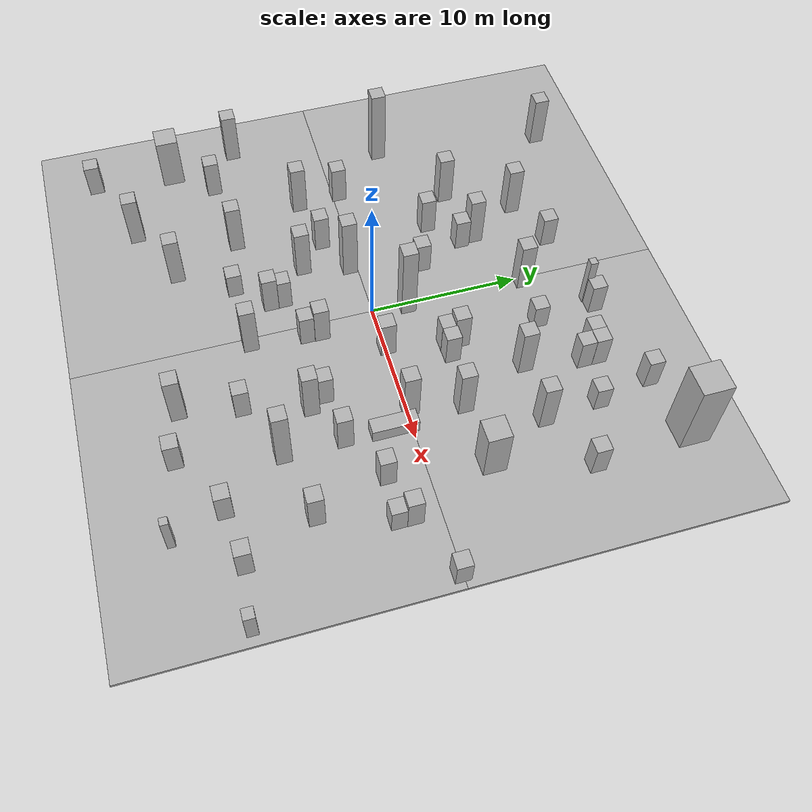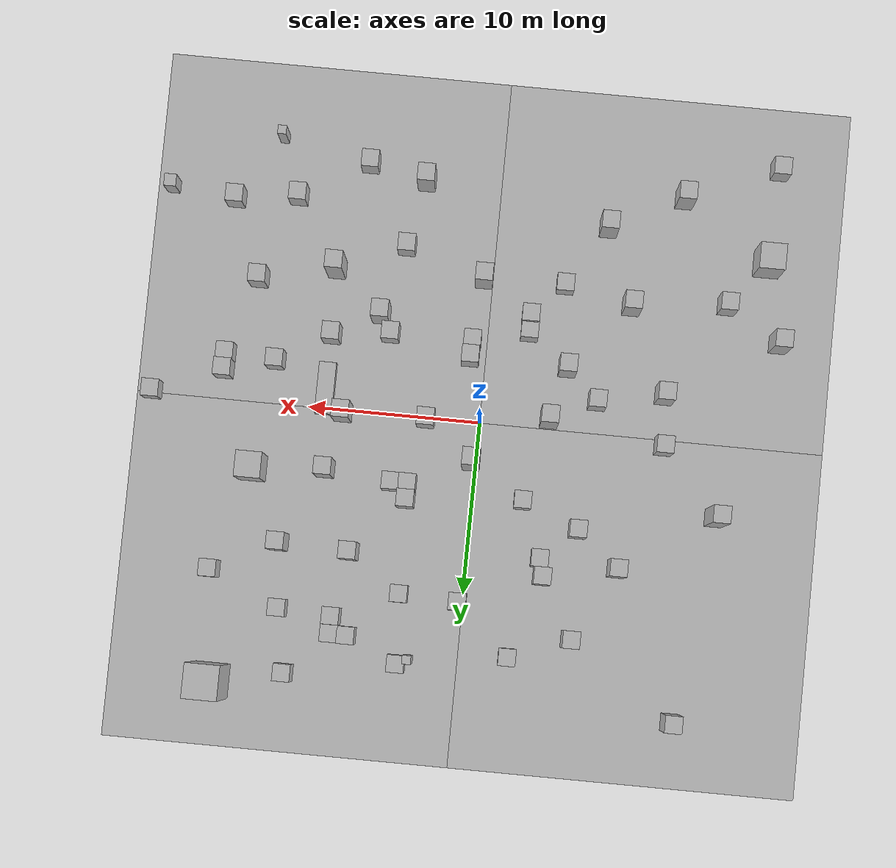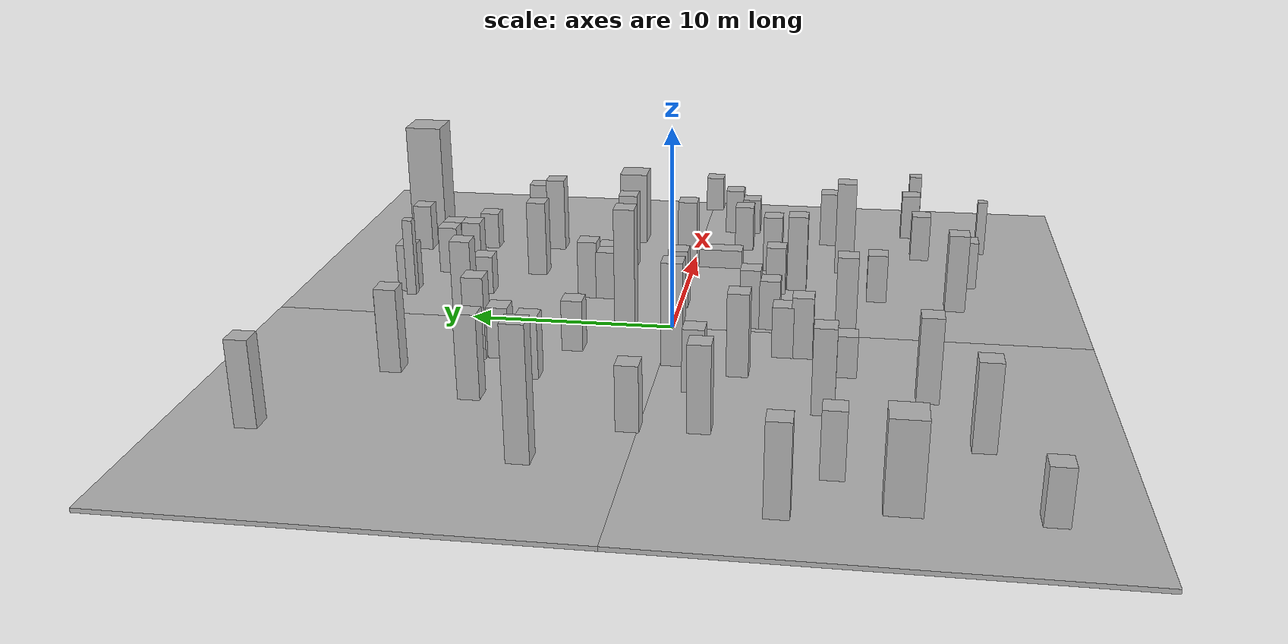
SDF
<sdf version="1.4">
 <world name="default">
  <include><uri>model://sun</uri></include>
  <model name="gd1">
   <static>1</static>
   <link name="chassis">
    <pose>10 10 -0.1 0 0 0</pose>
    <collision name="collision"><geometry><box><size>20 20 0.2</size></box></geometry></collision>
    <visual name="visual">
     <geometry>
      <mesh><uri>model://ground_surface/meshes/simple_box.dae</uri><scale>20 20 0.2</scale></mesh>
     </geometry>
     <material>
      <script>
       <uri>model://ground_surface/materials/scripts</uri>
       <uri>model://ground_surface/materials/textures</uri>
       <name>BrickBox/Ground</name>
      </script>
     </material>
    </visual>
   </link>
  </model>
  <model name="gd2">
   <static>1</static>
   <link name="chassis">
    <pose>10 -10 -0.1 0 0 0</pose>
    <collision name="collision"><geometry><box><size>20 20 0.2</size></box></geometry></collision>
    <visual name="visual">
     <geometry>
      <mesh><uri>model://ground_surface/meshes/simple_box.dae</uri><scale>20 20 0.2</scale></mesh>
     </geometry>
     <material>
      <script>
       <uri>model://ground_surface/materials/scripts</uri>
       <uri>model://ground_surface/materials/textures</uri>
       <name>BrickBox/Ground</name>
      </script>
     </material>
    </visual>
   </link>
  </model>
  <model name="gd3">
   <static>1</static>
   <link name="chassis">
    <pose>-10 10 -0.1 0 0 0</pose>
    <collision name="collision"><geometry><box><size>20 20 0.2</size></box></geometry></collision>
    <visual name="visual">
     <geometry>
      <mesh><uri>model://ground_surface/meshes/simple_box.dae</uri><scale>20 20 0.2</scale></mesh>
     </geometry>
     <material>
      <script>
       <uri>model://ground_surface/materials/scripts</uri>
       <uri>model://ground_surface/materials/textures</uri>
       <name>BrickBox/Ground</name>
      </script>
     </material>
    </visual>
   </link>
  </model>
  <model name="gd4">
   <static>1</static>
   <link name="chassis">
    <pose>-10 -10 -0.1 0 0 0</pose>
    <collision name="collision"><geometry><box><size>20 20 0.2</size></box></geometry></collision>
    <visual name="visual">
     <geometry>
      <mesh><uri>model://ground_surface/meshes/simple_box.dae</uri><scale>20 20 0.2</scale></mesh>
     </geometry>
     <material>
      <script>
       <uri>model://ground_surface/materials/scripts</uri>
       <uri>model://ground_surface/materials/textures</uri>
       <name>BrickBox/Ground</name>
      </script>
     </material>
    </visual>
   </link>
  </model>
  <model name="bb1">
   <static>1</static>
   <link name="chassis">
    <pose>12.88407 -15.56919 1.5 0 -0 0</pose>
    <collision name="collision"><geometry><box><size>0.5 0.5 3</size></box></geometry></collision>
    <visual name="visual">
     <geometry><mesh><uri>model://brick_box_2/meshes/simple_box.dae</uri><scale>0.5 0.5 3</scale></mesh></geometry>
     <material>
      <script>
       <uri>model://brick_box_2/materials/scripts</uri>
       <uri>model://brick_box_2/materials/textures</uri>
       <name>BrickBox/Flower</name>
      </script>
     </material>
    </visual>
   </link>
  </model>
  <model name="bb2">
   <static>1</static>
   <link name="chassis">
    <pose>19.0671 -12.13179 1.25 0 -0 0</pose>
    <collision name="collision"><geometry><box><size>0.7 0.7 2.5</size></box></geometry></collision>
    <visual name="visual">
     <geometry>
      <mesh><uri>model://brick_box_1/meshes/simple_box.dae</uri><scale>0.7 0.7 2.5</scale></mesh>
     </geometry>
     <material>
      <script>
       <uri>model://brick_box_1/materials/scripts</uri>
       <uri>model://brick_box_1/materials/textures</uri>
       <name>BrickBox/Diffuse</name>
      </script>
     </material>
    </visual>
   </link>
  </model>
  <model name="bb3">
   <static>1</static>
   <link name="chassis">
    <pose>19.0671 -0.13179 1 0 -0 0</pose>
    <collision name="collision"><geometry><box><size>1 1 2</size></box></geometry></collision>
    <visual name="visual">
     <geometry><mesh><uri>model://brick_box_1/meshes/simple_box.dae</uri><scale>1 1 2</scale></mesh></geometry>
     <material>
      <script>
       <uri>model://brick_box_1/materials/scripts</uri>
       <uri>model://brick_box_1/materials/textures</uri>
       <name>BrickBox/Diffuse</name>
      </script>
     </material>
    </visual>
   </link>
  </model>
  <model name="bb4">
   <static>1</static>
   <link name="chassis">
    <pose>9.0671 -8.13179 2.5 0 -0 0</pose>
    <collision name="collision"><geometry><box><size>1 1 5</size></box></geometry></collision>
    <visual name="visual">
     <geometry><mesh><uri>model://brick_box_3/meshes/simple_box.dae</uri><scale>1 1 5</scale></mesh></geometry>
     <material>
      <script>
       <uri>model://brick_box_3/materials/scripts</uri>
       <uri>model://brick_box_3/materials/textures</uri>
       <name>BrickBox/Sea</name>
      </script>
     </material>
    </visual>
   </link>
  </model>
  <model name="bb5">
   <static>1</static>
   <link name="chassis">
    <pose>12.81419 3.85419 2 0 -0 0</pose>
    <collision name="collision"><geometry><box><size>1.5 1.5 4</size></box></geometry></collision>
    <visual name="visual">
     <geometry><mesh><uri>model://brick_box_2/meshes/simple_box.dae</uri><scale>1.5 1.5 4</scale></mesh></geometry>
     <material>
      <script>
       <uri>model://brick_box_2/materials/scripts</uri>
       <uri>model://brick_box_2/materials/textures</uri>
       <name>BrickBox/Flower</name>
      </script>
     </material>
    </visual>
   </link>
  </model>
  <model name="bb6">
   <static>1</static>
   <link name="chassis">
    <pose>-10.67108 -14.11682 2 0 -0 0</pose>
    <collision name="collision"><geometry><box><size>1 1 4</size></box></geometry></collision>
    <visual name="visual">
     <geometry><mesh><uri>model://brick_box_1/meshes/simple_box.dae</uri><scale>1 1 4</scale></mesh></geometry>
     <material>
      <script>
       <uri>model://brick_box_1/materials/scripts</uri>
       <uri>model://brick_box_1/materials/textures</uri>
       <name>BrickBox/Diffuse</name>
      </script>
     </material>
    </visual>
   </link>
  </model>
  <model name="bb7">
   <static>1</static>
   <link name="chassis">
    <pose>-13.67108 -8.11682 1.5 0 -0 0</pose>
    <collision name="collision"><geometry><box><size>1 1 3</size></box></geometry></collision>
    <visual name="visual">
     <geometry><mesh><uri>model://brick_box_2/meshes/simple_box.dae</uri><scale>1 1 3</scale></mesh></geometry>
     <material>
      <script>
       <uri>model://brick_box_2/materials/scripts</uri>
       <uri>model://brick_box_2/materials/textures</uri>
       <name>BrickBox/Flower</name>
      </script>
     </material>
    </visual>
   </link>
  </model>
  <model name="bb9">
   <static>1</static>
   <link name="chassis">
    <pose>-14 4.25 3 0 -0 0</pose>
    <collision name="collision"><geometry><box><size>1 1 6</size></box></geometry></collision>
    <visual name="visual">
     <geometry><mesh><uri>model://brick_box_3/meshes/simple_box.dae</uri><scale>1 1 6</scale></mesh></geometry>
     <material>
      <script>
       <uri>model://brick_box_3/materials/scripts</uri>
       <uri>model://brick_box_3/materials/textures</uri>
       <name>BrickBox/Sea</name>
      </script>
     </material>
    </visual>
   </link>
  </model>
  <model name="bb10">
   <static>1</static>
   <link name="chassis">
    <pose>14 16.25 3 0 -0 0</pose>
    <collision name="collision"><geometry><box><size>2 2 6</size></box></geometry></collision>
    <visual name="visual">
     <geometry><mesh><uri>model://brick_box_3/meshes/simple_box.dae</uri><scale>2 2 6</scale></mesh></geometry>
     <material>
      <script>
       <uri>model://brick_box_3/materials/scripts</uri>
       <uri>model://brick_box_3/materials/textures</uri>
       <name>BrickBox/Sea</name>
      </script>
     </material>
    </visual>
   </link>
  </model>
  <model name="bb11">
   <static>1</static>
   <link name="chassis">
    <pose>-6.335 12 2 0 -0 0</pose>
    <collision name="collision"><geometry><box><size>1 1 4</size></box></geometry></collision>
    <visual name="visual">
     <geometry><mesh><uri>model://brick_box_1/meshes/simple_box.dae</uri><scale>1 1 4</scale></mesh></geometry>
     <material>
      <script>
       <uri>model://brick_box_1/materials/scripts</uri>
       <uri>model://brick_box_1/materials/textures</uri>
       <name>BrickBox/Diffuse</name>
      </script>
     </material>
    </visual>
   </link>
  </model>
  <model name="bb12">
   <static>1</static>
   <link name="chassis">
    <pose>2.81419 13.99419 2 0 -0 0</pose>
    <collision name="collision"><geometry><box><size>0.5 0.5 4</size></box></geometry></collision>
    <visual name="visual">
     <geometry><mesh><uri>model://brick_box_2/meshes/simple_box.dae</uri><scale>0.5 0.5 4</scale></mesh></geometry>
     <material>
      <script>
       <uri>model://brick_box_2/materials/scripts</uri>
       <uri>model://brick_box_2/materials/textures</uri>
       <name>BrickBox/Flower</name>
      </script>
     </material>
    </visual>
   </link>
  </model>
  <model name="bb13">
   <static>1</static>
   <link name="chassis">
    <pose>3.81419 4.85419 1.5 0 -0 0</pose>
    <collision name="collision"><geometry><box><size>1 1 3</size></box></geometry></collision>
    <visual name="visual">
     <geometry><mesh><uri>model://brick_box_2/meshes/simple_box.dae</uri><scale>1 1 3</scale></mesh></geometry>
     <material>
      <script>
       <uri>model://brick_box_2/materials/scripts</uri>
       <uri>model://brick_box_2/materials/textures</uri>
       <name>BrickBox/Flower</name>
      </script>
     </material>
    </visual>
   </link>
  </model>
  <model name="bb14">
   <static>1</static>
   <link name="chassis">
    <pose>9.0671 -1.13179 0.5 0 -0 0</pose>
    <collision name="collision"><geometry><box><size>1 3 1</size></box></geometry></collision>
    <visual name="visual">
     <geometry><mesh><uri>model://brick_box_3/meshes/simple_box.dae</uri><scale>1 3 1</scale></mesh></geometry>
     <material>
      <script>
       <uri>model://brick_box_3/materials/scripts</uri>
       <uri>model://brick_box_3/materials/textures</uri>
       <name>BrickBox/Sea</name>
      </script>
     </material>
    </visual>
   </link>
  </model>
  <model name="brick_box_1">
   <static>1</static>
   <link name="chassis">
    <pose>0 0 1 0 -0 0</pose>
    <collision name="collision"><geometry><box><size>1 1 2</size></box></geometry></collision>
    <visual name="visual">
     <geometry><mesh><uri>model://brick_box_1/meshes/simple_box.dae</uri><scale>1 1 2</scale></mesh></geometry>
     <material>
      <script>
       <uri>model://brick_box_1/materials/scripts</uri>
       <uri>model://brick_box_1/materials/textures</uri>
       <name>BrickBox/Diffuse</name>
      </script>
     </material>
    </visual>
   </link>
   <pose>10.56545 11.74803 0 0 -0 0</pose>
  </model>
  <model name="brick_box_1_0">
   <static>1</static>
   <link name="chassis">
    <pose>0 0 1.5 0 -0 0</pose>
    <collision name="collision"><geometry><box><size>1 1 3</size></box></geometry></collision>
    <visual name="visual">
     <geometry><mesh><uri>model://brick_box_1/meshes/simple_box.dae</uri><scale>1 1 3</scale></mesh></geometry>
     <material>
      <script>
       <uri>model://brick_box_1/materials/scripts</uri>
       <uri>model://brick_box_1/materials/textures</uri>
       <name>BrickBox/Diffuse</name>
      </script>
     </material>
    </visual>
   </link>
   <pose>3.09952 0.090579 0 0 -0 0</pose>
  </model>
  <model name="brick_box_1_1">
   <static>1</static>
   <link name="chassis">
    <pose>0 0 1.5 0 -0 0</pose>
    <collision name="collision"><geometry><box><size>1 1 3</size></box></geometry></collision>
    <visual name="visual">
     <geometry><mesh><uri>model://brick_box_1/meshes/simple_box.dae</uri><scale>1 1 3</scale></mesh></geometry>
     <material>
      <script>
       <uri>model://brick_box_1/materials/scripts</uri>
       <uri>model://brick_box_1/materials/textures</uri>
       <name>BrickBox/Diffuse</name>
      </script>
     </material>
    </visual>
   </link>
   <pose>-2.37672 -6.40251 0 0 -0 0</pose>
  </model>
  <model name="brick_box_2_0">
   <static>1</static>
   <link name="chassis">
    <pose>0 0 1 0 -0 0</pose>
    <collision name="collision"><geometry><box><size>1 1 2</size></box></geometry></collision>
    <visual name="visual">
     <geometry><mesh><uri>model://brick_box_2/meshes/simple_box.dae</uri><scale>1 1 2</scale></mesh></geometry>
     <material>
      <script>
       <uri>model://brick_box_2/materials/scripts</uri>
       <uri>model://brick_box_2/materials/textures</uri>
       <name>BrickBox/Flower</name>
      </script>
     </material>
    </visual>
   </link>
   <pose>15.01537 -2.67468 0 0 -0 0</pose>
  </model>
  <model name="brick_box_3_0">
   <static>1</static>
   <link name="chassis">
    <pose>-4.76455 -3.62531 2 0 -0 0</pose>
    <collision name="collision"><geometry><box><size>1 1 4</size></box></geometry></collision>
    <visual name="visual">
     <geometry><mesh><uri>model://brick_box_3/meshes/simple_box.dae</uri><scale>1 1 4</scale></mesh></geometry>
     <material>
      <script>
       <uri>model://brick_box_3/materials/scripts</uri>
       <uri>model://brick_box_3/materials/textures</uri>
       <name>BrickBox/Sea</name>
      </script>
     </material>
    </visual>
   </link>
  </model>
  <model name="brick_box_3_1">
   <static>1</static>
   <link name="chassis">
    <pose>0 0 1.5 0 -0 0</pose>
    <collision name="collision"><geometry><box><size>1 1 3</size></box></geometry></collision>
    <visual name="visual">
     <geometry><mesh><uri>model://brick_box_3/meshes/simple_box.dae</uri><scale>1 1 3</scale></mesh></geometry>
     <material>
      <script>
       <uri>model://brick_box_3/materials/scripts</uri>
       <uri>model://brick_box_3/materials/textures</uri>
       <name>BrickBox/Sea</name>
      </script>
     </material>
    </visual>
   </link>
   <pose>0.8791 -3.72445 0 0 -0 0</pose>
  </model>
  <model name="brick_box_2_1">
   <static>1</static>
   <link name="chassis">
    <pose>0 0 1.5 0 -0 0</pose>
    <collision name="collision"><geometry><box><size>1 1 3</size></box></geometry></collision>
    <visual name="visual">
     <geometry><mesh><uri>model://brick_box_2/meshes/simple_box.dae</uri><scale>1 1 3</scale></mesh></geometry>
     <material>
      <script>
       <uri>model://brick_box_2/materials/scripts</uri>
       <uri>model://brick_box_2/materials/textures</uri>
       <name>BrickBox/Flower</name>
      </script>
     </material>
    </visual>
   </link>
   <pose>-6.20459 5.6704 0 0 -0 0</pose>
  </model>
  <model name="brick_box_2">
   <static>1</static>
   <link name="chassis">
    <pose>0 0 0.5 0 -0 0</pose>
    <collision name="collision"><geometry><box><size>1 1 4</size></box></geometry></collision>
    <visual name="visual">
     <geometry><mesh><uri>model://brick_box_2/meshes/simple_box.dae</uri><scale>1 1 4</scale></mesh></geometry>
     <material>
      <script>
       <uri>model://brick_box_2/materials/scripts</uri>
       <uri>model://brick_box_2/materials/textures</uri>
       <name>BrickBox/Flower</name>
      </script>
     </material>
    </visual>
   </link>
   <pose>5.60625 -4.67681 0 0 -0 0</pose>
  </model>
  <model name="brick_box_2_16">
   <static>1</static>
   <link name="chassis">
    <pose>0 0 0.5 0 -0 0</pose>
    <collision name="collision"><geometry><box><size>1 1 4</size></box></geometry></collision>
    <visual name="visual">
     <geometry><mesh><uri>model://brick_box_2/meshes/simple_box.dae</uri><scale>1 1 4</scale></mesh></geometry>
     <material>
      <script>
       <uri>model://brick_box_2/materials/scripts</uri>
       <uri>model://brick_box_2/materials/textures</uri>
       <name>BrickBox/Flower</name>
      </script>
     </material>
    </visual>
   </link>
   <pose>0.848661 -4.67849 0 0 -0 0</pose>
  </model>
  <model name="brick_box_2_2">
   <static>1</static>
   <link name="chassis">
    <pose>0 0 2 0 -0 0</pose>
    <collision name="collision"><geometry><box><size>1 1 4</size></box></geometry></collision>
    <visual name="visual">
     <geometry><mesh><uri>model://brick_box_2/meshes/simple_box.dae</uri><scale>1 1 4</scale></mesh></geometry>
     <material>
      <script>
       <uri>model://brick_box_2/materials/scripts</uri>
       <uri>model://brick_box_2/materials/textures</uri>
       <name>BrickBox/Flower</name>
      </script>
     </material>
    </visual>
   </link>
   <pose>-12.48484 16.19184 0 0 -0 0</pose>
  </model>
  <model name="brick_box_1_2">
   <static>1</static>
   <link name="chassis">
    <pose>0 0 1.5 0 -0 0</pose>
    <collision name="collision"><geometry><box><size>1 1 3</size></box></geometry></collision>
    <visual name="visual">
     <geometry><mesh><uri>model://brick_box_1/meshes/simple_box.dae</uri><scale>1 1 3</scale></mesh></geometry>
     <material>
      <script>
       <uri>model://brick_box_1/materials/scripts</uri>
       <uri>model://brick_box_1/materials/textures</uri>
       <name>BrickBox/Diffuse</name>
      </script>
     </material>
    </visual>
   </link>
   <pose>13.51365 -7.18761 0 0 -0 0</pose>
  </model>
  <model name="brick_box_1_3">
   <static>1</static>
   <link name="chassis">
    <pose>0 0 2 0 -0 0</pose>
    <collision name="collision"><geometry><box><size>1 1 4</size></box></geometry></collision>
    <visual name="visual">
     <geometry><mesh><uri>model://brick_box_1/meshes/simple_box.dae</uri><scale>1 1 4</scale></mesh></geometry>
     <material>
      <script>
       <uri>model://brick_box_1/materials/scripts</uri>
       <uri>model://brick_box_1/materials/textures</uri>
       <name>BrickBox/Diffuse</name>
      </script>
     </material>
    </visual>
   </link>
   <pose>-8.13545 -7.56426 0 0 -0 0</pose>
  </model>
  <model name="brick_box_1_4">
   <static>1</static>
   <link name="chassis">
    <pose>0 0 2 0 -0 0</pose>
    <collision name="collision"><geometry><box><size>1 1 4</size></box></geometry></collision>
    <visual name="visual">
     <geometry><mesh><uri>model://brick_box_1/meshes/simple_box.dae</uri><scale>1 1 4</scale></mesh></geometry>
     <material>
      <script>
       <uri>model://brick_box_1/materials/scripts</uri>
       <uri>model://brick_box_1/materials/textures</uri>
       <name>BrickBox/Diffuse</name>
      </script>
     </material>
    </visual>
   </link>
   <pose>10.86163 7.99247 0 0 -0 0</pose>
  </model>
  <model name="brick_box_2_3">
   <static>1</static>
   <link name="chassis">
    <pose>0 0 2 0 -0 0</pose>
    <collision name="collision"><geometry><box><size>1 1 4</size></box></geometry></collision>
    <visual name="visual">
     <geometry><mesh><uri>model://brick_box_2/meshes/simple_box.dae</uri><scale>1 1 4</scale></mesh></geometry>
     <material>
      <script>
       <uri>model://brick_box_2/materials/scripts</uri>
       <uri>model://brick_box_2/materials/textures</uri>
       <name>BrickBox/Flower</name>
      </script>
     </material>
    </visual>
   </link>
   <pose>-16.83918 -6.1609 0 0 -0 0</pose>
  </model>
  <model name="brick_box_2_4">
   <static>1</static>
   <link name="chassis">
    <pose>0 0 2 0 -0 0</pose>
    <collision name="collision"><geometry><box><size>1 1 4</size></box></geometry></collision>
    <visual name="visual">
     <geometry><mesh><uri>model://brick_box_2/meshes/simple_box.dae</uri><scale>1 1 4</scale></mesh></geometry>
     <material>
      <script>
       <uri>model://brick_box_2/materials/scripts</uri>
       <uri>model://brick_box_2/materials/textures</uri>
       <name>BrickBox/Flower</name>
      </script>
     </material>
    </visual>
   </link>
   <pose>6.7533 8.15373 0 0 -0 0</pose>
  </model>
  <model name="brick_box_1_5">
   <static>1</static>
   <link name="chassis">
    <pose>0 0 2 0 -0 0</pose>
    <collision name="collision"><geometry><box><size>1 1 4</size></box></geometry></collision>
    <visual name="visual">
     <geometry><mesh><uri>model://brick_box_1/meshes/simple_box.dae</uri><scale>1 1 4</scale></mesh></geometry>
     <material>
      <script>
       <uri>model://brick_box_1/materials/scripts</uri>
       <uri>model://brick_box_1/materials/textures</uri>
       <name>BrickBox/Diffuse</name>
      </script>
     </material>
    </visual>
   </link>
   <pose>-4.39202 8.55641 0 0 -0 0</pose>
  </model>
  <model name="brick_box_1_26">
   <static>1</static>
   <link name="chassis">
    <pose>4.35217 -13.74967 2 0 -0 0</pose>
    <collision name="collision"><geometry><box><size>1 1 4</size></box></geometry></collision>
    <visual name="visual">
     <geometry><mesh><uri>model://brick_box_1/meshes/simple_box.dae</uri><scale>1 1 4</scale></mesh></geometry>
     <material>
      <script>
       <uri>model://brick_box_1/materials/scripts</uri>
       <uri>model://brick_box_1/materials/textures</uri>
       <name>BrickBox/Diffuse</name>
      </script>
     </material>
    </visual>
   </link>
  </model>
  <model name="brick_box_1_6">
   <static>1</static>
   <link name="chassis">
    <pose>6.25217 -5.72967 2 0 -0 0</pose>
    <collision name="collision"><geometry><box><size>1 1 4</size></box></geometry></collision>
    <visual name="visual">
     <geometry><mesh><uri>model://brick_box_1/meshes/simple_box.dae</uri><scale>1 1 4</scale></mesh></geometry>
     <material>
      <script>
       <uri>model://brick_box_1/materials/scripts</uri>
       <uri>model://brick_box_1/materials/textures</uri>
       <name>BrickBox/Diffuse</name>
      </script>
     </material>
    </visual>
   </link>
  </model>
  <model name="brick_box_1_7">
   <static>1</static>
   <link name="chassis">
    <pose>-15.78765 -10.78958 2 0 -0 0</pose>
    <collision name="collision"><geometry><box><size>1.5 1.5 4</size></box></geometry></collision>
    <visual name="visual">
     <geometry><mesh><uri>model://brick_box_1/meshes/simple_box.dae</uri><scale>1.5 1.5 4</scale></mesh></geometry>
     <material>
      <script>
       <uri>model://brick_box_1/materials/scripts</uri>
       <uri>model://brick_box_1/materials/textures</uri>
       <name>BrickBox/Diffuse</name>
      </script>
     </material>
    </visual>
   </link>
  </model>
  <model name="brick_box_2_5">
   <static>1</static>
   <link name="chassis">
    <pose>3.68471 10.30592 1 0 -0 0</pose>
    <collision name="collision"><geometry><box><size>1 1 2</size></box></geometry></collision>
    <visual name="visual">
     <geometry><mesh><uri>model://brick_box_2/meshes/simple_box.dae</uri><scale>1 1 2</scale></mesh></geometry>
     <material>
      <script>
       <uri>model://brick_box_2/materials/scripts</uri>
       <uri>model://brick_box_2/materials/textures</uri>
       <name>BrickBox/Flower</name>
      </script>
     </material>
    </visual>
   </link>
  </model>
  <model name="brick_box_2_6">
   <static>1</static>
   <link name="chassis">
    <pose>0 0 1.5 0 -0 0</pose>
    <collision name="collision"><geometry><box><size>1 1 3</size></box></geometry></collision>
    <visual name="visual">
     <geometry><mesh><uri>model://brick_box_2/meshes/simple_box.dae</uri><scale>1 1 3</scale></mesh></geometry>
     <material>
      <script>
       <uri>model://brick_box_2/materials/scripts</uri>
       <uri>model://brick_box_2/materials/textures</uri>
       <name>BrickBox/Flower</name>
      </script>
     </material>
    </visual>
   </link>
   <pose>-10.71658 0.404974 0 0 -0 0</pose>
  </model>
  <model name="brick_box_3_2">
   <static>1</static>
   <link name="chassis">
    <pose>0.263583 2.32809 3 0 -0 0</pose>
    <collision name="collision"><geometry><box><size>1 1 6</size></box></geometry></collision>
    <visual name="visual">
     <geometry><mesh><uri>model://brick_box_3/meshes/simple_box.dae</uri><scale>1 1 6</scale></mesh></geometry>
     <material>
      <script>
       <uri>model://brick_box_3/materials/scripts</uri>
       <uri>model://brick_box_3/materials/textures</uri>
       <name>BrickBox/Sea</name>
      </script>
     </material>
    </visual>
   </link>
  </model>
  <model name="brick_box_2_7">
   <static>1</static>
   <link name="chassis">
    <pose>-6.414712 -12.02008 2 0 -0 0</pose>
    <collision name="collision"><geometry><box><size>1 1 4</size></box></geometry></collision>
    <visual name="visual">
     <geometry><mesh><uri>model://brick_box_2/meshes/simple_box.dae</uri><scale>1 1 4</scale></mesh></geometry>
     <material>
      <script>
       <uri>model://brick_box_2/materials/scripts</uri>
       <uri>model://brick_box_2/materials/textures</uri>
       <name>BrickBox/Flower</name>
      </script>
     </material>
    </visual>
   </link>
  </model>
  <model name="brick_box_1_8">
   <static>1</static>
   <link name="chassis">
    <pose>0 0 2 0 -0 0</pose>
    <collision name="collision"><geometry><box><size>1 1 4</size></box></geometry></collision>
    <visual name="visual">
     <geometry><mesh><uri>model://brick_box_1/meshes/simple_box.dae</uri><scale>1 1 4</scale></mesh></geometry>
     <material>
      <script>
       <uri>model://brick_box_1/materials/scripts</uri>
       <uri>model://brick_box_1/materials/textures</uri>
       <name>BrickBox/Diffuse</name>
      </script>
     </material>
    </visual>
   </link>
   <pose>-10.49281 -2.5476 0 0 -0 0</pose>
  </model>
  <model name="brick_box_1_9">
   <static>1</static>
   <link name="chassis">
    <pose>0 0 0.5 0 -0 0</pose>
    <collision name="collision"><geometry><box><size>1 1 4</size></box></geometry></collision>
    <visual name="visual">
     <geometry><mesh><uri>model://brick_box_1/meshes/simple_box.dae</uri><scale>1 1 4</scale></mesh></geometry>
     <material>
      <script>
       <uri>model://brick_box_1/materials/scripts</uri>
       <uri>model://brick_box_1/materials/textures</uri>
       <name>BrickBox/Diffuse</name>
      </script>
     </material>
    </visual>
   </link>
   <pose>7.42118 12.9415 0 0 -0 0</pose>
  </model>
  <model name="brick_box_2_15">
   <static>1</static>
   <link name="chassis">
    <pose>0 0 0.5 0 -0 0</pose>
    <collision name="collision"><geometry><box><size>1 1 4</size></box></geometry></collision>
    <visual name="visual">
     <geometry><mesh><uri>model://brick_box_2/meshes/simple_box.dae</uri><scale>1 1 4</scale></mesh></geometry>
     <material>
      <script>
       <uri>model://brick_box_2/materials/scripts</uri>
       <uri>model://brick_box_2/materials/textures</uri>
       <name>BrickBox/Flower</name>
      </script>
     </material>
    </visual>
   </link>
   <pose>3.80825 3.91955 0 0 -0 0</pose>
  </model>
  <model name="brick_box_2_11">
   <static>1</static>
   <link name="chassis">
    <pose>0 0 2.5 0 -0 0</pose>
    <collision name="collision"><geometry><box><size>1 1 5</size></box></geometry></collision>
    <visual name="visual">
     <geometry><mesh><uri>model://brick_box_2/meshes/simple_box.dae</uri><scale>1 1 5</scale></mesh></geometry>
     <material>
      <script>
       <uri>model://brick_box_2/materials/scripts</uri>
       <uri>model://brick_box_2/materials/textures</uri>
       <name>BrickBox/Flower</name>
      </script>
     </material>
    </visual>
   </link>
   <pose>-3.97626 -0.552348 0 0 -0 0</pose>
  </model>
  <model name="brick_box_3_4">
   <static>1</static>
   <link name="chassis">
    <pose>0 0 2 0 -0 0</pose>
    <collision name="collision"><geometry><box><size>1 1 4</size></box></geometry></collision>
    <visual name="visual">
     <geometry><mesh><uri>model://brick_box_3/meshes/simple_box.dae</uri><scale>1 1 4</scale></mesh></geometry>
     <material>
      <script>
       <uri>model://brick_box_3/materials/scripts</uri>
       <uri>model://brick_box_3/materials/textures</uri>
       <name>BrickBox/Sea</name>
      </script>
     </material>
    </visual>
   </link>
   <pose>-8.63812 7.71492 0 0 -0 0</pose>
  </model>
  <model name="brick_box_3_5">
   <static>1</static>
   <link name="chassis">
    <pose>0 0 2 0 -0 0</pose>
    <collision name="collision"><geometry><box><size>1 1 4</size></box></geometry></collision>
    <visual name="visual">
     <geometry><mesh><uri>model://brick_box_3/meshes/simple_box.dae</uri><scale>1 1 4</scale></mesh></geometry>
     <material>
      <script>
       <uri>model://brick_box_3/materials/scripts</uri>
       <uri>model://brick_box_3/materials/textures</uri>
       <name>BrickBox/Sea</name>
      </script>
     </material>
    </visual>
   </link>
   <pose>0.504016 -8.36044 0 0 -0 0</pose>
  </model>
  <model name="brick_box_3_7">
   <static>1</static>
   <link name="chassis">
    <pose>8.61857 3.52495 2 0 -0 0</pose>
    <collision name="collision"><geometry><box><size>1 1 4</size></box></geometry></collision>
    <visual name="visual">
     <geometry><mesh><uri>model://brick_box_3/meshes/simple_box.dae</uri><scale>1 1 4</scale></mesh></geometry>
     <material>
      <script>
       <uri>model://brick_box_3/materials/scripts</uri>
       <uri>model://brick_box_3/materials/textures</uri>
       <name>BrickBox/Sea</name>
      </script>
     </material>
    </visual>
   </link>
  </model>
  <model name="brick_box_2_12">
   <static>1</static>
   <link name="chassis">
    <pose>0 0 1 0 -0 0</pose>
    <collision name="collision"><geometry><box><size>1 1 2</size></box></geometry></collision>
    <visual name="visual">
     <geometry><mesh><uri>model://brick_box_2/meshes/simple_box.dae</uri><scale>1 1 2</scale></mesh></geometry>
     <material>
      <script>
       <uri>model://brick_box_2/materials/scripts</uri>
       <uri>model://brick_box_2/materials/textures</uri>
       <name>BrickBox/Flower</name>
      </script>
     </material>
    </visual>
   </link>
   <pose>-4.20972 -8.46147 0 0 -0 0</pose>
  </model>
  <model name="brick_box_3_9">
   <static>1</static>
   <link name="chassis">
    <pose>0 0 1.5 0 -0 0</pose>
    <collision name="collision"><geometry><box><size>1 1 3</size></box></geometry></collision>
    <visual name="visual">
     <geometry><mesh><uri>model://brick_box_3/meshes/simple_box.dae</uri><scale>1 1 3</scale></mesh></geometry>
     <material>
      <script>
       <uri>model://brick_box_3/materials/scripts</uri>
       <uri>model://brick_box_3/materials/textures</uri>
       <name>BrickBox/Sea</name>
      </script>
     </material>
    </visual>
   </link>
   <pose>-6.64863 -1.85045 0 0 -0 0</pose>
  </model>
  <model name="brick_box_2_13">
   <static>1</static>
   <link name="chassis">
    <pose>0 0 2 0 -0 0</pose>
    <collision name="collision"><geometry><box><size>1 1 4</size></box></geometry></collision>
    <visual name="visual">
     <geometry><mesh><uri>model://brick_box_2/meshes/simple_box.dae</uri><scale>1 1 4</scale></mesh></geometry>
     <material>
      <script>
       <uri>model://brick_box_2/materials/scripts</uri>
       <uri>model://brick_box_2/materials/textures</uri>
       <name>BrickBox/Flower</name>
      </script>
     </material>
    </visual>
   </link>
   <pose>7.93039 0.191898 0 0 -0 0</pose>
  </model>
  <model name="brick_box_1_12">
   <static>1</static>
   <link name="chassis">
    <pose>0 0 2 0 -0 0</pose>
    <collision name="collision"><geometry><box><size>1 1 4</size></box></geometry></collision>
    <visual name="visual">
     <geometry><mesh><uri>model://brick_box_1/meshes/simple_box.dae</uri><scale>1 1 4</scale></mesh></geometry>
     <material>
      <script>
       <uri>model://brick_box_1/materials/scripts</uri>
       <uri>model://brick_box_1/materials/textures</uri>
       <name>BrickBox/Diffuse</name>
      </script>
     </material>
    </visual>
   </link>
   <pose>0.284593 10.46753 0 0 -0 0</pose>
  </model>
  <model name="brick_box_3_10">
   <static>1</static>
   <link name="chassis">
    <pose>0 0 1.5 0 -0 0</pose>
    <collision name="collision"><geometry><box><size>1 1 3</size></box></geometry></collision>
    <visual name="visual">
     <geometry><mesh><uri>model://brick_box_3/meshes/simple_box.dae</uri><scale>1 1 3</scale></mesh></geometry>
     <material>
      <script>
       <uri>model://brick_box_3/materials/scripts</uri>
       <uri>model://brick_box_3/materials/textures</uri>
       <name>BrickBox/Sea</name>
      </script>
     </material>
    </visual>
   </link>
   <pose>8.98169 -4.28757 0 0 -0 0</pose>
  </model>
  <model name="brick_box_3_12">
   <static>1</static>
   <link name="chassis">
    <pose>0 0 0.5 0 -0 0</pose>
    <collision name="collision"><geometry><box><size>1 1 4</size></box></geometry></collision>
    <visual name="visual">
     <geometry><mesh><uri>model://brick_box_3/meshes/simple_box.dae</uri><scale>1 1 4</scale></mesh></geometry>
     <material>
      <script>
       <uri>model://brick_box_3/materials/scripts</uri>
       <uri>model://brick_box_3/materials/textures</uri>
       <name>BrickBox/Sea</name>
      </script>
     </material>
    </visual>
   </link>
   <pose>4.76824 3.92713 0 0 -0 0</pose>
  </model>
  <model name="brick_box_3_13">
   <static>1</static>
   <link name="chassis">
    <pose>0 0 0.5 0 -0 0</pose>
    <collision name="collision"><geometry><box><size>1 1 4</size></box></geometry></collision>
    <visual name="visual">
     <geometry><mesh><uri>model://brick_box_3/meshes/simple_box.dae</uri><scale>1 1 4</scale></mesh></geometry>
     <material>
      <script>
       <uri>model://brick_box_3/materials/scripts</uri>
       <uri>model://brick_box_3/materials/textures</uri>
       <name>BrickBox/Sea</name>
      </script>
     </material>
    </visual>
   </link>
   <pose>-2.39601 -5.50375 0 0 -0 0</pose>
  </model>
  <model name="brick_box_2_19">
   <static>1</static>
   <link name="chassis">
    <pose>0 0 0.5 0 -0 0</pose>
    <collision name="collision"><geometry><box><size>1 1 4</size></box></geometry></collision>
    <visual name="visual">
     <geometry><mesh><uri>model://brick_box_2/meshes/simple_box.dae</uri><scale>1 1 4</scale></mesh></geometry>
     <material>
      <script>
       <uri>model://brick_box_2/materials/scripts</uri>
       <uri>model://brick_box_2/materials/textures</uri>
       <name>BrickBox/Flower</name>
      </script>
     </material>
    </visual>
   </link>
   <pose>-4.17763 7.52462 0 0 -0 0</pose>
  </model>
  <model name="brick_box_2_20">
   <static>1</static>
   <link name="chassis">
    <pose>0 0 0.5 0 -0 0</pose>
    <collision name="collision"><geometry><box><size>1 1 4</size></box></geometry></collision>
    <visual name="visual">
     <geometry><mesh><uri>model://brick_box_2/meshes/simple_box.dae</uri><scale>1 1 4</scale></mesh></geometry>
     <material>
      <script>
       <uri>model://brick_box_2/materials/scripts</uri>
       <uri>model://brick_box_2/materials/textures</uri>
       <name>BrickBox/Flower</name>
      </script>
     </material>
    </visual>
   </link>
   <pose>7.42083 11.9361 0 0 -0 0</pose>
  </model>
  <model name="brick_box_3_14">
   <static>1</static>
   <link name="chassis">
    <pose>0 0 0.5 0 -0 0</pose>
    <collision name="collision"><geometry><box><size>1 1 4</size></box></geometry></collision>
    <visual name="visual">
     <geometry><mesh><uri>model://brick_box_3/meshes/simple_box.dae</uri><scale>1 1 4</scale></mesh></geometry>
     <material>
      <script>
       <uri>model://brick_box_3/materials/scripts</uri>
       <uri>model://brick_box_3/materials/textures</uri>
       <name>BrickBox/Sea</name>
      </script>
     </material>
    </visual>
   </link>
   <pose>6.45544 12.9621 0 0 -0 0</pose>
  </model>
  <model name="brick_box_3_15">
   <static>1</static>
   <link name="chassis">
    <pose>0 0 0.5 0 -0 0</pose>
    <collision name="collision"><geometry><box><size>1 1 4</size></box></geometry></collision>
    <visual name="visual">
     <geometry><mesh><uri>model://brick_box_3/meshes/simple_box.dae</uri><scale>1 1 4</scale></mesh></geometry>
     <material>
      <script>
       <uri>model://brick_box_3/materials/scripts</uri>
       <uri>model://brick_box_3/materials/textures</uri>
       <name>BrickBox/Sea</name>
      </script>
     </material>
    </visual>
   </link>
   <pose>15.0215 -1.69596 0 0 -0 0</pose>
  </model>
  <model name="brick_box_3_16">
   <static>1</static>
   <link name="chassis">
    <pose>0 0 0.5 0 -0 0</pose>
    <collision name="collision"><geometry><box><size>1 1 4</size></box></geometry></collision>
    <visual name="visual">
     <geometry><mesh><uri>model://brick_box_3/meshes/simple_box.dae</uri><scale>1 1 4</scale></mesh></geometry>
     <material>
      <script>
       <uri>model://brick_box_3/materials/scripts</uri>
       <uri>model://brick_box_3/materials/textures</uri>
       <name>BrickBox/Sea</name>
      </script>
     </material>
    </visual>
   </link>
   <pose>15.322 -11.7631 0 0 -0 0</pose>
  </model>
  <model name="brick_box_3_17">
   <static>1</static>
   <link name="chassis">
    <pose>0 0 0.5 0 -0 0</pose>
    <collision name="collision"><geometry><box><size>1 1 4</size></box></geometry></collision>
    <visual name="visual">
     <geometry><mesh><uri>model://brick_box_3/meshes/simple_box.dae</uri><scale>1 1 4</scale></mesh></geometry>
     <material>
      <script>
       <uri>model://brick_box_3/materials/scripts</uri>
       <uri>model://brick_box_3/materials/textures</uri>
       <name>BrickBox/Sea</name>
      </script>
     </material>
    </visual>
   </link>
   <pose>3.47314 14.3082 0 0 -0 0</pose>
  </model>
  <model name="brick_box_2_21">
   <static>1</static>
   <link name="chassis">
    <pose>0 0 0.5 0 -0 0</pose>
    <collision name="collision"><geometry><box><size>1 1 4</size></box></geometry></collision>
    <visual name="visual">
     <geometry><mesh><uri>model://brick_box_2/meshes/simple_box.dae</uri><scale>1 1 4</scale></mesh></geometry>
     <material>
      <script>
       <uri>model://brick_box_2/materials/scripts</uri>
       <uri>model://brick_box_2/materials/textures</uri>
       <name>BrickBox/Flower</name>
      </script>
     </material>
    </visual>
   </link>
   <pose>7.70823 -14.5082 0 0 -0 0</pose>
  </model>
  <model name="brick_box_2_22">
   <static>1</static>
   <link name="chassis">
    <pose>0 0 0.5 0 -0 0</pose>
    <collision name="collision"><geometry><box><size>1 1 4</size></box></geometry></collision>
    <visual name="visual">
     <geometry><mesh><uri>model://brick_box_2/meshes/simple_box.dae</uri><scale>1 1 4</scale></mesh></geometry>
     <material>
      <script>
       <uri>model://brick_box_2/materials/scripts</uri>
       <uri>model://brick_box_2/materials/textures</uri>
       <name>BrickBox/Flower</name>
      </script>
     </material>
    </visual>
   </link>
   <pose>14.6741 9.86596 0 0 -0 0</pose>
  </model>
  <model name="brick_box_2_23">
   <static>1</static>
   <link name="chassis">
    <pose>0 0 0.5 0 -0 0</pose>
    <collision name="collision"><geometry><box><size>1 1 4</size></box></geometry></collision>
    <visual name="visual">
     <geometry><mesh><uri>model://brick_box_2/meshes/simple_box.dae</uri><scale>1 1 4</scale></mesh></geometry>
     <material>
      <script>
       <uri>model://brick_box_2/materials/scripts</uri>
       <uri>model://brick_box_2/materials/textures</uri>
       <name>BrickBox/Flower</name>
      </script>
     </material>
    </visual>
   </link>
   <pose>-2.82988 13.3422 0 0 -0 0</pose>
  </model>
  <model name="brick_box_2_17">
   <static>1</static>
   <link name="chassis">
    <pose>0 0 0.5 0 -0 0</pose>
    <collision name="collision"><geometry><box><size>1 1 4</size></box></geometry></collision>
    <visual name="visual">
     <geometry><mesh><uri>model://brick_box_2/meshes/simple_box.dae</uri><scale>1 1 4</scale></mesh></geometry>
     <material>
      <script>
       <uri>model://brick_box_2/materials/scripts</uri>
       <uri>model://brick_box_2/materials/textures</uri>
       <name>BrickBox/Flower</name>
      </script>
     </material>
    </visual>
   </link>
   <pose>11.7021 -12.2192 0 0 -0 0</pose>
  </model>
  <model name="brick_box_2_18">
   <static>1</static>
   <link name="chassis">
    <pose>0 0 0.5 0 -0 0</pose>
    <collision name="collision"><geometry><box><size>1 1 4</size></box></geometry></collision>
    <visual name="visual">
     <geometry><mesh><uri>model://brick_box_2/meshes/simple_box.dae</uri><scale>1 1 4</scale></mesh></geometry>
     <material>
      <script>
       <uri>model://brick_box_2/materials/scripts</uri>
       <uri>model://brick_box_2/materials/textures</uri>
       <name>BrickBox/Flower</name>
      </script>
     </material>
    </visual>
   </link>
   <pose>9.87253 15.4132 0 0 -0 0</pose>
  </model>
  <model name="brick_box_1_14">
   <static>1</static>
   <link name="chassis">
    <pose>0 0 0.5 0 -0 0</pose>
    <collision name="collision"><geometry><box><size>1 1 4</size></box></geometry></collision>
    <visual name="visual">
     <geometry><mesh><uri>model://brick_box_1/meshes/simple_box.dae</uri><scale>1 1 4</scale></mesh></geometry>
     <material>
      <script>
       <uri>model://brick_box_1/materials/scripts</uri>
       <uri>model://brick_box_1/materials/textures</uri>
       <name>BrickBox/Diffuse</name>
      </script>
     </material>
    </visual>
   </link>
   <pose>12.0815 -2.49662 0 0 -0 0</pose>
  </model>
  <model name="brick_box_2_24">
   <static>1</static>
   <link name="chassis">
    <pose>0 0 0.5 0 -0 0</pose>
    <collision name="collision"><geometry><box><size>1 1 4</size></box></geometry></collision>
    <visual name="visual">
     <geometry><mesh><uri>model://brick_box_2/meshes/simple_box.dae</uri><scale>1 1 4</scale></mesh></geometry>
     <material>
      <script>
       <uri>model://brick_box_2/materials/scripts</uri>
       <uri>model://brick_box_2/materials/textures</uri>
       <name>BrickBox/Flower</name>
      </script>
     </material>
    </visual>
   </link>
   <pose>5.1402 -9.84975 0 0 -0 0</pose>
  </model>
  <model name="brick_box_2_25">
   <static>1</static>
   <link name="chassis">
    <pose>0 0 0.5 0 -0 0</pose>
    <collision name="collision"><geometry><box><size>1 1 4</size></box></geometry></collision>
    <visual name="visual">
     <geometry><mesh><uri>model://brick_box_2/meshes/simple_box.dae</uri><scale>1 1 4</scale></mesh></geometry>
     <material>
      <script>
       <uri>model://brick_box_2/materials/scripts</uri>
       <uri>model://brick_box_2/materials/textures</uri>
       <name>BrickBox/Flower</name>
      </script>
     </material>
    </visual>
   </link>
   <pose>-16.073 -16.3131 0 0 -0 0</pose>
  </model>
  <model name="brick_box_2_26">
   <static>1</static>
   <link name="chassis">
    <pose>0 0 0.5 0 -0 0</pose>
    <collision name="collision"><geometry><box><size>1 1 4</size></box></geometry></collision>
    <visual name="visual">
     <geometry><mesh><uri>model://brick_box_2/meshes/simple_box.dae</uri><scale>1 1 4</scale></mesh></geometry>
     <material>
      <script>
       <uri>model://brick_box_2/materials/scripts</uri>
       <uri>model://brick_box_2/materials/textures</uri>
       <name>BrickBox/Flower</name>
      </script>
     </material>
    </visual>
   </link>
   <pose>-2.90085 4.29517 0 0 -0 0</pose>
  </model>
 </world>
</sdf>
